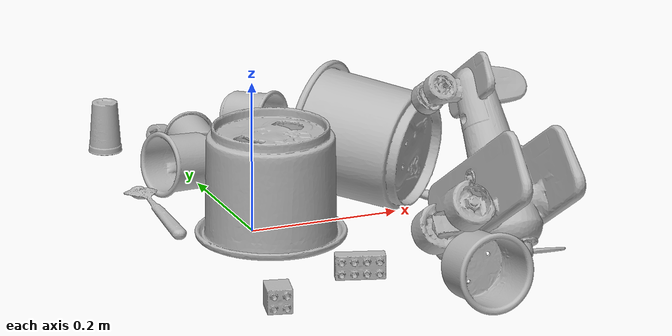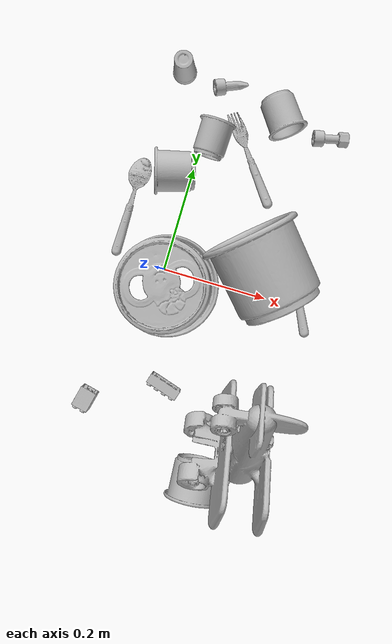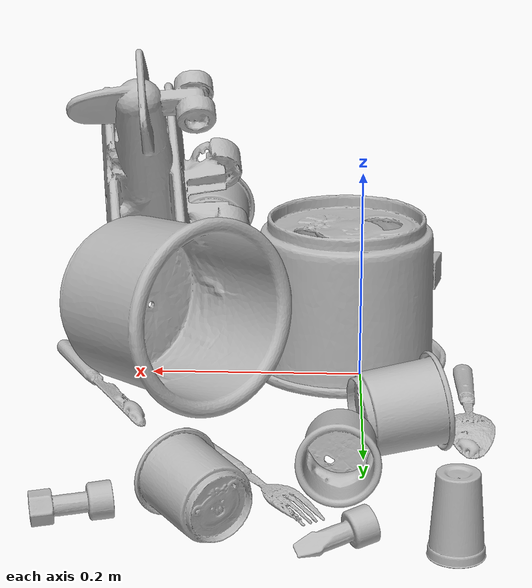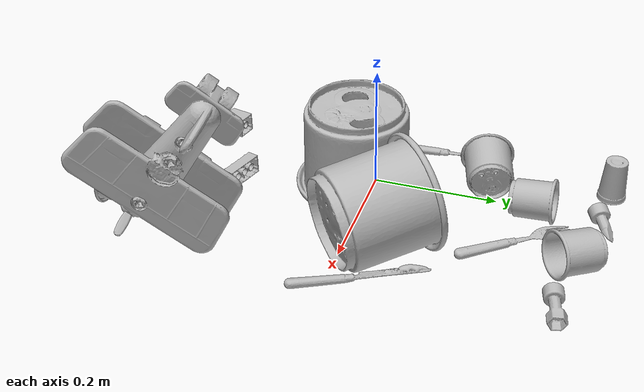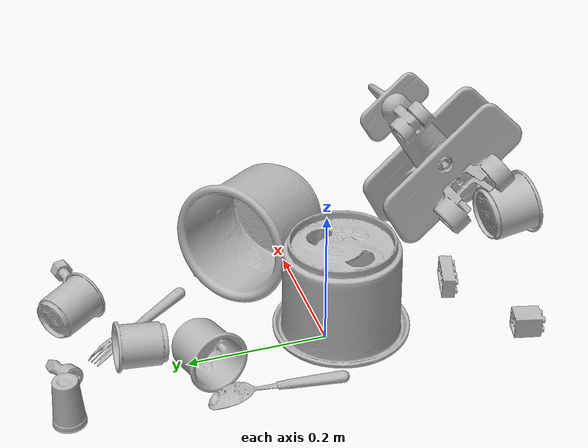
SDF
<sdf version="1.4">
  <world name="default">
    <light name="light1" type="point">
      <pose>0 0 1 0 0 0</pose>
      <diffuse>3 3 3 1</diffuse>
      <specular>3 3 3 1</specular>
    </light>
    <light name="light2" type="point">
      <pose>0 0.5 2 0 0 0</pose>
      <diffuse>1 1 1 1</diffuse>
      <specular>1 1 1 1</specular>
    </light>
    <light name="light3" type="point">
      <pose>0 0.5 2 0 0 0</pose>
      <diffuse>3 3 3 1</diffuse>
      <specular>3 3 3 1</specular>
    </light>
    <scene>
      <ambient>0.7 0.7 0.7</ambient>
    </scene>
    <model name="cup1">
      <link name="link_cup1">
        <collision name="default">
          <geometry>
            <mesh>
              <uri>model://d_cups/collision_meshes/collision.obj</uri>
              <scale>1.0 1.0 1.0</scale>
            </mesh>
          </geometry>
          <surface>
            <friction>
              <ode>
                <mu>0.5</mu>
                <mu2>0.5</mu2>
              </ode>
            </friction>
          <contact>
        <ode>
            <max_vel>0</max_vel>
            <min_depth>0.0001</min_depth>
            <kp>1e8</kp>
        </ode>
    </contact></surface>
        </collision>
        <visual name="default">
          <geometry>
            <mesh>
              <uri>model://d_cups/visual_meshes/visual.dae</uri>
              <scale>1.0 1.0 1.0</scale>
            </mesh>
          </geometry>
        </visual>
        <inertial>
          <mass>0.02583918906748295</mass>
          <pose>0.0008068039314821362 0.001911739120259881 -0.0022666507866233587 0.24011637128749466 -0.2471028358176743 0.5942765290496752</pose>
          <inertia>
            <ixx>2.1633481e-05</ixx>
            <iyy>2.1570875e-05</iyy>
            <izz>1.9581978e-05</izz>
            <ixy>0</ixy>
            <ixz>0</ixz>
            <iyz>0</iyz>
          </inertia>
        </inertial>
      </link>
      <pose>0.021019691601395607 0.2596198320388794 0.032463084906339645 -1.4725062179644066 0.46100593181254673 0.008092169222296141</pose>
    </model>
    <model name="silverware1">
      <link name="link_silverware1">
        <collision name="default">
          <geometry>
            <mesh>
              <uri>model://fork/collision_meshes/collision.obj</uri>
              <scale>1.0 1.0 1.0</scale>
            </mesh>
          </geometry>
          <surface>
            <friction>
              <ode>
                <mu>0.5</mu>
                <mu2>0.5</mu2>
              </ode>
            </friction>
          <contact>
        <ode>
            <max_vel>0</max_vel>
            <min_depth>0.0001</min_depth>
            <kp>1e8</kp>
        </ode>
    </contact></surface>
        </collision>
        <visual name="default">
          <geometry>
            <mesh>
              <uri>model://fork/visual_meshes/visual.dae</uri>
              <scale>1.0 1.0 1.0</scale>
            </mesh>
          </geometry>
        </visual>
        <inertial>
          <mass>0.019409121945500374</mass>
          <pose>-0.02957003004848957 0.00046588227269239724 0.0003218860365450382 -0.013551247621251511 -0.010977829980421018 0.014453895491116085</pose>
          <inertia>
            <ixx>6.8039935e-07</ixx>
            <iyy>5.0671635e-05</iyy>
            <izz>5.097597e-05</izz>
            <ixy>0</ixy>
            <ixz>0</ixz>
            <iyz>0</iyz>
          </inertia>
        </inertial>
      </link>
      <pose>0.09959754347801208 0.24627582728862762 0.007446599192917347 -3.063499121525453 0.002835964822874386 2.222795409388407</pose>
    </model>
    <model name="cup2">
      <link name="link_cup2">
        <collision name="default">
          <geometry>
            <mesh>
              <uri>model://e_cups/collision_meshes/collision.obj</uri>
              <scale>1.0 1.0 1.0</scale>
            </mesh>
          </geometry>
          <surface>
            <friction>
              <ode>
                <mu>0.5</mu>
                <mu2>0.5</mu2>
              </ode>
            </friction>
          <contact>
        <ode>
            <max_vel>0</max_vel>
            <min_depth>0.0001</min_depth>
            <kp>1e8</kp>
        </ode>
    </contact></surface>
        </collision>
        <visual name="default">
          <geometry>
            <mesh>
              <uri>model://e_cups/visual_meshes/visual.dae</uri>
              <scale>1.0 1.0 1.0</scale>
            </mesh>
          </geometry>
        </visual>
        <inertial>
          <mass>0.044056184589862823</mass>
          <pose>0.0011355748865753412 0.0028797839768230915 -0.0038829699624329805 0.6952404811842238 0.0876797234541652 -0.5235249298074676</pose>
          <inertia>
            <ixx>3.8846523e-05</ixx>
            <iyy>4.060018e-05</iyy>
            <izz>3.714177e-05</izz>
            <ixy>0</ixy>
            <ixz>0</ixz>
            <iyz>0</iyz>
          </inertia>
        </inertial>
      </link>
      <pose>0.13224782049655914 0.33863189816474915 0.03465082123875618 -1.484472377303153 -0.035677959788572404 -2.5174200241444624</pose>
    </model>
    <model name="silverware2">
      <link name="link_silverware2">
        <collision name="default">
          <geometry>
            <mesh>
              <uri>model://knife/collision_meshes/collision.obj</uri>
              <scale>1.0 1.0 1.0</scale>
            </mesh>
          </geometry>
          <surface>
            <friction>
              <ode>
                <mu>0.5</mu>
                <mu2>0.5</mu2>
              </ode>
            </friction>
          <contact>
        <ode>
            <max_vel>0</max_vel>
            <min_depth>0.0001</min_depth>
            <kp>1e8</kp>
        </ode>
    </contact></surface>
        </collision>
        <visual name="default">
          <geometry>
            <mesh>
              <uri>model://knife/visual_meshes/visual.dae</uri>
              <scale>1.0 1.0 1.0</scale>
            </mesh>
          </geometry>
        </visual>
        <inertial>
          <mass>0.018338654190301895</mass>
          <pose>-0.02378525212407112 0.00152751209679991 5.062017953605391e-05 0.07305878484845407 0.017248414361503102 -0.007409825003193847</pose>
          <inertia>
            <ixx>5.2052525e-07</ixx>
            <iyy>7.045415e-05</iyy>
            <izz>7.062178e-05</izz>
            <ixy>0</ixy>
            <ixz>0</ixz>
            <iyz>0</iyz>
          </inertia>
        </inertial>
      </link>
      <pose>0.24345438182353973 0.045568305999040604 0.0058107576332986355 2.889370988481965 0.02591485781879256 2.0556466825407838</pose>
    </model>
    <model name="cup3">
      <link name="link_cup3">
        <collision name="default">
          <geometry>
            <mesh>
              <uri>model://g_cups/collision_meshes/collision.obj</uri>
              <scale>1.0 1.0 1.0</scale>
            </mesh>
          </geometry>
          <surface>
            <friction>
              <ode>
                <mu>0.5</mu>
                <mu2>0.5</mu2>
              </ode>
            </friction>
          <contact>
        <ode>
            <max_vel>0</max_vel>
            <min_depth>0.0001</min_depth>
            <kp>1e8</kp>
        </ode>
    </contact></surface>
        </collision>
        <visual name="default">
          <geometry>
            <mesh>
              <uri>model://g_cups/visual_meshes/visual.dae</uri>
              <scale>1.0 1.0 1.0</scale>
            </mesh>
          </geometry>
        </visual>
        <inertial>
          <mass>0.07798270881175995</mass>
          <pose>-0.0007946274126879871 -4.206407902529463e-05 -0.0021329382434487343 -0.21383467808934026 -0.31409923984197585 0.31123390815877217</pose>
          <inertia>
            <ixx>9.102333e-05</ixx>
            <iyy>9.0713715e-05</iyy>
            <izz>9.428446e-05</izz>
            <ixy>0</ixy>
            <ixz>0</ixz>
            <iyz>0</iyz>
          </inertia>
        </inertial>
      </link>
      <pose>-0.0300942100584507 0.18000319600105286 0.04009166359901428 -1.4554116509420638 -0.37809728805326615 1.805833511497143</pose>
    </model>
    <model name="silverware3">
      <link name="link_silverware3">
        <collision name="default">
          <geometry>
            <mesh>
              <uri>model://spoon/collision_meshes/collision.obj</uri>
              <scale>1.0 1.0 1.0</scale>
            </mesh>
          </geometry>
          <surface>
            <friction>
              <ode>
                <mu>0.5</mu>
                <mu2>0.5</mu2>
              </ode>
            </friction>
          <contact>
        <ode>
            <max_vel>0</max_vel>
            <min_depth>0.0001</min_depth>
            <kp>1e8</kp>
        </ode>
    </contact></surface>
        </collision>
        <visual name="default">
          <geometry>
            <mesh>
              <uri>model://spoon/visual_meshes/visual.dae</uri>
              <scale>1.0 1.0 1.0</scale>
            </mesh>
          </geometry>
        </visual>
        <inertial>
          <mass>0.03767607361078262</mass>
          <pose>-0.005526314023882151 -0.00160341733135283 -0.0007271650829352438 0.035216427360727776 -0.03906582911385382 0.006150613897789847</pose>
          <inertia>
            <ixx>2.095604e-06</ixx>
            <iyy>0.00014335623</iyy>
            <izz>0.00014438969</izz>
            <ixy>0</ixy>
            <ixz>0</ixz>
            <iyz>0</iyz>
          </inertia>
        </inertial>
      </link>
      <pose>-0.0939980000257492 0.09808349609375 0.010133819654583931 3.104912156772829 -0.061975896785910776 1.5546730997803646</pose>
    </model>
    <model name="cup4">
      <link name="link_cup4">
        <collision name="default">
          <geometry>
            <mesh>
              <uri>model://i_cups/collision_meshes/collision.obj</uri>
              <scale>2.0 2.0 2.0</scale>
            </mesh>
          </geometry>
          <surface>
            <friction>
              <ode>
                <mu>0.5</mu>
                <mu2>0.5</mu2>
              </ode>
            </friction>
          <contact>
        <ode>
            <max_vel>0</max_vel>
            <min_depth>0.0001</min_depth>
            <kp>1e8</kp>
        </ode>
    </contact></surface>
        </collision>
        <visual name="default">
          <geometry>
            <mesh>
              <uri>model://i_cups/visual_meshes/visual.dae</uri>
              <scale>2.0 2.0 2.0</scale>
            </mesh>
          </geometry>
        </visual>
        <inertial>
          <mass>0.5538490414619446</mass>
          <pose>0.00022480632469523698 0.00033594807609915733 -0.0017158057307824492 -0.028982964625507153 -0.039873324075769 -0.3459146585522926</pose>
          <inertia>
            <ixx>0.003067248</ixx>
            <iyy>0.003094273</iyy>
            <izz>0.0034281453</izz>
            <ixy>0</ixy>
            <ixz>0</ixz>
            <iyz>0</iyz>
          </inertia>
        </inertial>
      </link>
      <pose>0.01451744046062231 -0.028595319017767906 0.07586600631475449 3.1415925896520998 1.90169637802459e-07 -2.3508677739656827</pose>
    </model>
    <model name="cup41">
      <link name="link_cup41">
        <collision name="default">
          <geometry>
            <mesh>
              <uri>model://cup_small/collision_meshes/collision.obj</uri>
              <scale>1.0 1.0 1.0</scale>
            </mesh>
          </geometry>
          <surface>
            <friction>
              <ode>
                <mu>0.5</mu>
                <mu2>0.5</mu2>
              </ode>
            </friction>
          <contact>
        <ode>
            <max_vel>0</max_vel>
            <min_depth>0.0001</min_depth>
            <kp>1e8</kp>
        </ode>
    </contact></surface>
        </collision>
        <visual name="default">
          <geometry>
            <mesh>
              <uri>model://cup_small/visual_meshes/visual.dae</uri>
              <scale>1.0 1.0 1.0</scale>
            </mesh>
          </geometry>
        </visual>
        <inertial>
          <mass>0.014494861476123333</mass>
          <pose>0.000104824714071583 -0.0003377838584128767 -0.010742826387286186 -0.01149312034772668 -0.015280288652376739 -0.5058210166411498</pose>
          <inertia>
            <ixx>8.534352e-06</ixx>
            <iyy>8.578376e-06</iyy>
            <izz>3.853286e-06</izz>
            <ixy>0</ixy>
            <ixz>0</ixz>
            <iyz>0</iyz>
          </inertia>
        </inertial>
      </link>
      <pose>-0.0678691416978836 0.37434348464012146 0.03470122814178467 -3.1328833425729936 0.008216540797002552 1.4974630124489132</pose>
    </model>
    <model name="cup5">
      <link name="link_cup5">
        <collision name="default">
          <geometry>
            <mesh>
              <uri>model://h_cups/collision_meshes/collision.obj</uri>
              <scale>2.0 2.0 2.0</scale>
            </mesh>
          </geometry>
          <surface>
            <friction>
              <ode>
                <mu>0.5</mu>
                <mu2>0.5</mu2>
              </ode>
            </friction>
          <contact>
        <ode>
            <max_vel>0</max_vel>
            <min_depth>0.0001</min_depth>
            <kp>1e8</kp>
        </ode>
    </contact></surface>
        </collision>
        <visual name="default">
          <geometry>
            <mesh>
              <uri>model://h_cups/visual_meshes/visual.dae</uri>
              <scale>2.0 2.0 2.0</scale>
            </mesh>
          </geometry>
        </visual>
        <inertial>
          <mass>0.5365790128707886</mass>
          <pose>-5.406028139987029e-05 0.00046037189895287156 -0.0036810787860304117 -0.02436222281077587 0.06545240855648493 0.12885003891433794</pose>
          <inertia>
            <ixx>0.002771868</ixx>
            <iyy>0.0027387904</iyy>
            <izz>0.0029069292</izz>
            <ixy>0</ixy>
            <ixz>0</ixz>
            <iyz>0</iyz>
          </inertia>
        </inertial>
      </link>
      <pose>0.18080493807792664 0.04893019422888756 0.08427442610263824 -1.4674891106774184 0.034183425487376976 0.7359469778554181</pose>
    </model>
    <model name="cup51">
      <link name="link_cup51">
        <collision name="default">
          <geometry>
            <mesh>
              <uri>model://j_cups/collision_meshes/collision.obj</uri>
              <scale>1.0 1.0 1.0</scale>
            </mesh>
          </geometry>
          <surface>
            <friction>
              <ode>
                <mu>0.5</mu>
                <mu2>0.5</mu2>
              </ode>
            </friction>
          <contact>
        <ode>
            <max_vel>0</max_vel>
            <min_depth>0.0001</min_depth>
            <kp>1e8</kp>
        </ode>
    </contact></surface>
        </collision>
        <visual name="default">
          <geometry>
            <mesh>
              <uri>model://j_cups/visual_meshes/visual.dae</uri>
              <scale>1.0 1.0 1.0</scale>
            </mesh>
          </geometry>
        </visual>
        <inertial>
          <mass>0.08643309026956558</mass>
          <pose>0.0006164878141134977 0.000539897009730339 -0.0013479007175192237 0.030303582878034346 0.03757999590477698 0.4386876701083768</pose>
          <inertia>
            <ixx>0.00012691108</ixx>
            <iyy>0.00012823076</iyy>
            <izz>0.00014630218</izz>
            <ixy>0</ixy>
            <ixz>0</ixz>
            <iyz>0</iyz>
          </inertia>
        </inertial>
      </link>
      <pose>0.16663163900375366 -0.3555164635181427 0.04700892046093941 1.3430884340334457 -1.0054869445701693 0.27253641095185316</pose>
    </model>
    <model name="toy1">
      <link name="link_toy1">
        <collision name="default">
          <geometry>
            <mesh>
              <uri>model://f_lego_duplo/collision_meshes/collision.obj</uri>
              <scale>1.0 1.0 1.0</scale>
            </mesh>
          </geometry>
          <surface>
            <friction>
              <ode>
                <mu>0.5</mu>
                <mu2>0.5</mu2>
              </ode>
            </friction>
          <contact>
        <ode>
            <max_vel>0</max_vel>
            <min_depth>0.0001</min_depth>
            <kp>1e8</kp>
        </ode>
    </contact></surface>
        </collision>
        <visual name="default">
          <geometry>
            <mesh>
              <uri>model://f_lego_duplo/visual_meshes/visual.dae</uri>
              <scale>1.0 1.0 1.0</scale>
            </mesh>
          </geometry>
        </visual>
        <inertial>
          <mass>0.03726755082607269</mass>
          <pose>2.3694148694630712e-05 0.00013393144763540477 0.0018837880343198776 0.029838475432906467 -0.014425202105620092 -0.6756589304715467</pose>
          <inertia>
            <ixx>7.874838e-06</ixx>
            <iyy>7.944995e-06</iyy>
            <izz>6.8356926e-06</izz>
            <ixy>0</ixy>
            <ixz>0</ixz>
            <iyz>0</iyz>
          </inertia>
        </inertial>
      </link>
      <pose>-0.07450252026319504 -0.27774882316589355 0.016363853588700294 0.666935011288667 -1.5707391914864075 0.6757870558377872</pose>
    </model>
    <model name="toy2">
      <link name="link_toy2">
        <collision name="default">
          <geometry>
            <mesh>
              <uri>model://a_toy_airplane/collision_meshes/collision.obj</uri>
              <scale>1.0 1.0 1.0</scale>
            </mesh>
          </geometry>
          <surface>
            <friction>
              <ode>
                <mu>0.5</mu>
                <mu2>0.5</mu2>
              </ode>
            </friction>
          <contact>
        <ode>
            <max_vel>0</max_vel>
            <min_depth>0.0001</min_depth>
            <kp>1e8</kp>
        </ode>
    </contact></surface>
        </collision>
        <visual name="default">
          <geometry>
            <mesh>
              <uri>model://a_toy_airplane/visual_meshes/visual.dae</uri>
              <scale>1.0 1.0 1.0</scale>
            </mesh>
          </geometry>
        </visual>
        <inertial>
          <mass>2.8230273723602295</mass>
          <pose>0.025165094062685966 -0.003707324154675007 -0.0011962448479607701 -0.012016973205606891 -0.14663498091084715 0.004149146833454428</pose>
          <inertia>
            <ixx>0.010251767</ixx>
            <iyy>0.014938904</iyy>
            <izz>0.017491622</izz>
            <ixy>0</ixy>
            <ixz>0</ixz>
            <iyz>0</iyz>
          </inertia>
        </inertial>
      </link>
      <pose>0.22667095065116882 -0.23962467908859253 0.14025400578975677 -1.908726048421633 0.8927665080815129 -1.8319563043107183</pose>
    </model>
    <model name="toy3">
      <link name="link_toy3">
        <collision name="default">
          <geometry>
            <mesh>
              <uri>model://e_toy_airplane/collision_meshes/collision.obj</uri>
              <scale>1.0 1.0 1.0</scale>
            </mesh>
          </geometry>
          <surface>
            <friction>
              <ode>
                <mu>0.5</mu>
                <mu2>0.5</mu2>
              </ode>
            </friction>
          <contact>
        <ode>
            <max_vel>0</max_vel>
            <min_depth>0.0001</min_depth>
            <kp>1e8</kp>
        </ode>
    </contact></surface>
        </collision>
        <visual name="default">
          <geometry>
            <mesh>
              <uri>model://e_toy_airplane/visual_meshes/visual.dae</uri>
              <scale>1.0 1.0 1.0</scale>
            </mesh>
          </geometry>
        </visual>
        <inertial>
          <mass>0.018226178362965584</mass>
          <pose>0.00011740501213353127 -2.2482903659692965e-05 -0.011187204159796238 0.005518473613481416 0.009228340672948143 0.1504115676354622</pose>
          <inertia>
            <ixx>5.5628384e-06</ixx>
            <iyy>5.505933e-06</iyy>
            <izz>1.6718515e-06</izz>
            <ixy>0</ixy>
            <ixz>0</ixz>
            <iyz>0</iyz>
          </inertia>
        </inertial>
      </link>
      <pose>0.02542148530483246 0.3710150420665741 0.012129695154726505 -1.802351868272518 0.6722851361694743 -1.2645620197318983</pose>
    </model>
    <model name="toy4">
      <link name="link_toy4">
        <collision name="default">
          <geometry>
            <mesh>
              <uri>model://c_toy_airplane/collision_meshes/collision.obj</uri>
              <scale>1.0 1.0 1.0</scale>
            </mesh>
          </geometry>
          <surface>
            <friction>
              <ode>
                <mu>0.5</mu>
                <mu2>0.5</mu2>
              </ode>
            </friction>
          <contact>
        <ode>
            <max_vel>0</max_vel>
            <min_depth>0.0001</min_depth>
            <kp>1e8</kp>
        </ode>
    </contact></surface>
        </collision>
        <visual name="default">
          <geometry>
            <mesh>
              <uri>model://c_toy_airplane/visual_meshes/visual.dae</uri>
              <scale>1.0 1.0 1.0</scale>
            </mesh>
          </geometry>
        </visual>
        <inertial>
          <mass>0.025432955473661423</mass>
          <pose>-0.00023024249821901321 -4.429159048413567e-07 -0.006080531049519777 -0.006192114712999555 -0.016797950833505656 0.7654545807195076</pose>
          <inertia>
            <ixx>1.1678292e-05</ixx>
            <iyy>1.1645335e-05</iyy>
            <izz>2.7418316e-06</izz>
            <ixy>0</ixy>
            <ixz>0</ixz>
            <iyz>0</iyz>
          </inertia>
        </inertial>
      </link>
      <pose>0.23422013223171234 0.32572731375694275 0.01421588845551014 -1.7881073342549487 1.3247828623652935 -1.5461347935759067</pose>
    </model>
    <model name="toy5">
      <link name="link_toy5">
        <collision name="default">
          <geometry>
            <mesh>
              <uri>model://c_lego_duplo/collision_meshes/collision.obj</uri>
              <scale>1.0 1.0 1.0</scale>
            </mesh>
          </geometry>
          <surface>
            <friction>
              <ode>
                <mu>0.5</mu>
                <mu2>0.5</mu2>
              </ode>
            </friction>
          <contact>
        <ode>
            <max_vel>0</max_vel>
            <min_depth>0.0001</min_depth>
            <kp>1e8</kp>
        </ode>
    </contact></surface>
        </collision>
        <visual name="default">
          <geometry>
            <mesh>
              <uri>model://c_lego_duplo/visual_meshes/visual.dae</uri>
              <scale>1.0 1.0 1.0</scale>
            </mesh>
          </geometry>
        </visual>
        <inertial>
          <mass>0.03308485820889473</mass>
          <pose>0.00031645988929085433 0.00019464598153717816 0.0010453154100105166 -0.011520788894510418 0.005900092683279709 0.031100331745055027</pose>
          <inertia>
            <ixx>1.2731672e-05</ixx>
            <iyy>4.066954e-06</iyy>
            <izz>1.4878268e-05</izz>
            <ixy>0</ixy>
            <ixz>0</ixz>
            <iyz>0</iyz>
          </inertia>
        </inertial>
      </link>
      <pose>0.061298929154872894 -0.21359308063983917 0.01625136099755764 2.069288299124297 -1.5448071323314423 -0.7994830974445941</pose>
    </model>
  <physics type="ode">
      <max_contacts>50</max_contacts>
      <ode>
        <solver>
          <type>quick</type>
          <iters>75</iters>
        </solver>
        <constraints>
          <contact_max_correcting_vel>0</contact_max_correcting_vel>
          <contact_surface_layer>0</contact_surface_layer>
        </constraints>
      </ode>
    </physics></world>
</sdf>
